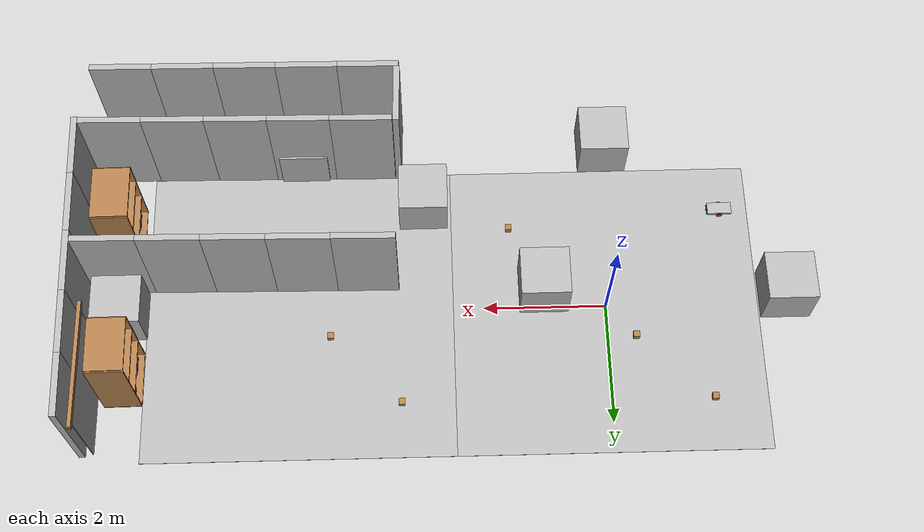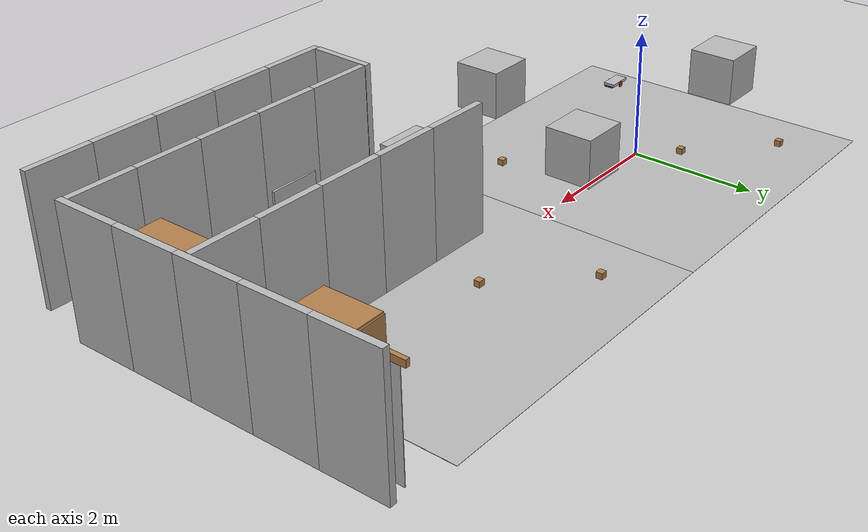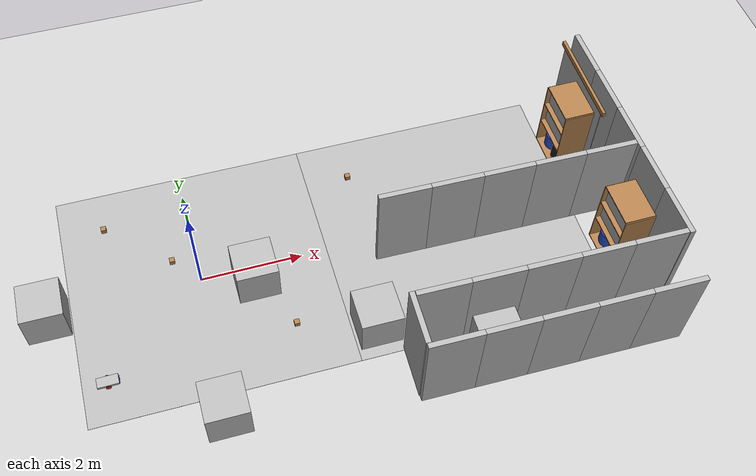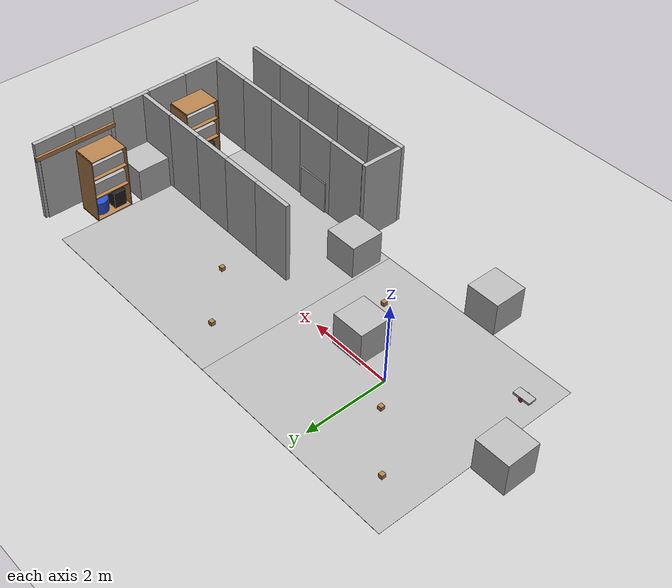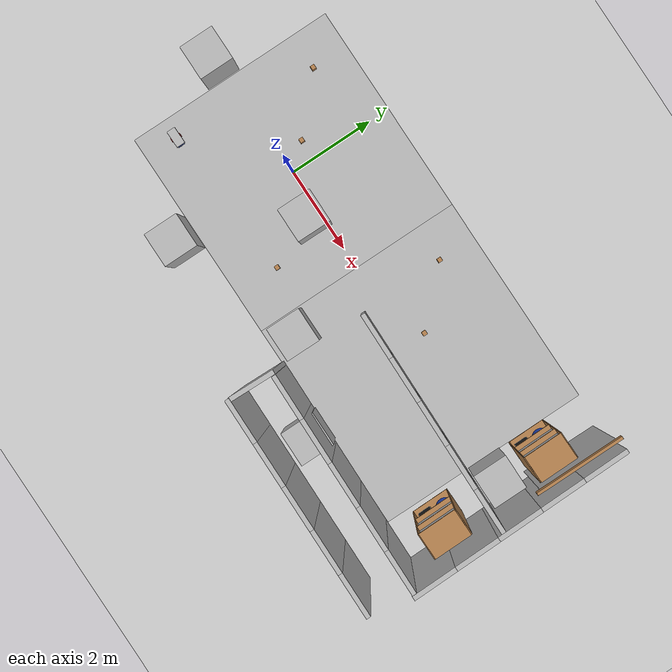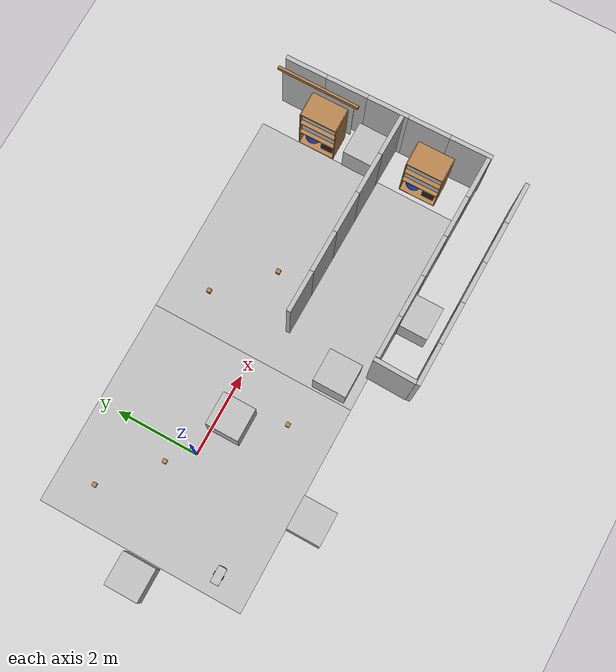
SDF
<sdf version="1.7">
 <world name="default">
  <model name="ground_plane">
   <static>1</static>
   <link name="link">
    <collision name="collision">
     <geometry><plane><normal>0 0 1</normal><size>100 100</size></plane></geometry>
     <surface><friction><ode><mu>100</mu><mu2>50</mu2></ode></friction></surface>
    </collision>
    <visual name="visual">
     <cast_shadows>0</cast_shadows>
     <geometry><plane><normal>0 0 1</normal><size>100 100</size></plane></geometry>
     <material>
      <script><uri>file://media/materials/scripts/gazebo.material</uri><name>Gazebo/Grey</name></script>
     </material>
    </visual>
   </link>
  </model>
  <model name="line_flooring">
   <link name="link">
    <collision name="collision">
     <geometry><plane><normal>0 0 1</normal><size>5 5</size></plane></geometry>
     <surface><friction><ode><mu>100</mu><mu2>50</mu2></ode></friction></surface>
    </collision>
    <visual name="visual">
     <geometry><plane><normal>0 0 1</normal><size>5 5</size></plane></geometry>
     <material>
      <script>
       <uri>model://env_line_flooring/materials/test_texture.material</uri>
       <name>LineFlooringTexture</name>
      </script>
     </material>
    </visual>
   </link>
   <pose>0 0 0.001 0 -0 0</pose>
   <static>1</static>
  </model>
  <model name="line_flooring2">
   <link name="link">
    <collision name="collision">
     <geometry><plane><normal>0 0 1</normal><size>5 5</size></plane></geometry>
     <surface><friction><ode><mu>100</mu><mu2>50</mu2></ode></friction></surface>
    </collision>
    <visual name="visual">
     <geometry><plane><normal>0 0 1</normal><size>5 5</size></plane></geometry>
     <material>
      <script>
       <uri>model://env_line_flooring/materials/test_texture.material</uri>
       <name>LineFlooringTexture</name>
      </script>
     </material>
    </visual>
   </link>
   <pose>5 0 0.001 0 -0 0</pose>
   <static>1</static>
  </model>
  <model name="number1">
   <pose>-0.090036 -2.90628 0.4 0 -0 0</pose>
   <static>1</static>
   <link name="link">
    <visual name="visual">
     <geometry><mesh><uri>model://number1/meshes/number.dae</uri></mesh></geometry>
     <material>
      <script>
       <uri>model://number1/materials/scripts</uri>
       <uri>model://number1/materials/textures</uri>
       <name>Number/One</name>
      </script>
     </material>
    </visual>
   </link>
  </model>
  <model name="number2">
   <pose>-2.92229 -0.135822 0.4 0 -0 0</pose>
   <static>1</static>
   <link name="link">
    <visual name="visual">
     <geometry><mesh><uri>model://number1/meshes/number.dae</uri></mesh></geometry>
     <material>
      <script>
       <uri>model://number2/materials/scripts</uri>
       <uri>model://number2/materials/textures</uri>
       <name>Number/Two</name>
      </script>
     </material>
    </visual>
   </link>
  </model>
  <model name="number4">
   <pose>4.9322 -2.83843 0.4 0 -0 0</pose>
   <static>1</static>
   <link name="link">
    <visual name="visual">
     <geometry><mesh><uri>model://number1/meshes/number.dae</uri></mesh></geometry>
     <material>
      <script>
       <uri>model://number4/materials/scripts</uri>
       <uri>model://number4/materials/textures</uri>
       <name>Number/Four</name>
      </script>
     </material>
    </visual>
   </link>
  </model>
  <model name="number5">
   <pose>7.88469 0.009354 0.4 0 -0 0</pose>
   <static>1</static>
   <link name="link">
    <visual name="visual">
     <geometry><mesh><uri>model://number1/meshes/number.dae</uri></mesh></geometry>
     <material>
      <script>
       <uri>model://number5/materials/scripts</uri>
       <uri>model://number5/materials/textures</uri>
       <name>Number/Five</name>
      </script>
     </material>
    </visual>
   </link>
  </model>
  <model name="wood_cube_10cm">
   <link name="link">
    <pose>0 0 0.05 0 -0 0</pose>
    <inertial>
     <mass>0.5167</mass>
     <inertia>
      <ixx>0.000861167</ixx>
      <ixy>0</ixy>
      <ixz>0</ixz>
      <iyy>0.000861167</iyy>
      <iyz>0</iyz>
      <izz>0.000861167</izz>
     </inertia>
    </inertial>
    <collision name="collision">
     <geometry><box><size>0.1 0.1 0.1</size></box></geometry>
     <surface>
      <contact>
       <poissons_ratio>0.347</poissons_ratio>
       <elastic_modulus>8.8e+09</elastic_modulus>
       <ode><kp>100000</kp><kd>100</kd><max_vel>100</max_vel><min_depth>0.001</min_depth></ode>
      </contact>
      <friction>
       <torsional>
        <coefficient>1</coefficient>
        <use_patch_radius>0</use_patch_radius>
        <surface_radius>0.01</surface_radius>
       </torsional>
      </friction>
     </surface>
    </collision>
    <visual name="visual">
     <geometry><box><size>0.1 0.1 0.1</size></box></geometry>
     <material>
      <script><uri>file://media/materials/scripts/gazebo.material</uri><name>Gazebo/Wood</name></script>
     </material>
    </visual>
   </link>
   <pose>1.54178 -1.4356 -3e-06 -1e-06 -3e-06 -0</pose>
  </model>
  <model name="env_wood_shelf">
   <link name="base">
    <inertial>
     <pose>0 0 0.8 0 -0 0</pose>
     <mass>100</mass>
     <inertia><ixx>33.4</ixx><ixy>0</ixy><ixz>0</ixz><iyy>41.7</iyy><iyz>0</iyz><izz>8.42</izz></inertia>
    </inertial>
    <collision name="collision_bottom">
     <pose>0 0 0.01 0 -0 0</pose>
     <geometry><box><size>0.6 0.9 0.02</size></box></geometry>
    </collision>
    <visual name="visual_bottom">
     <pose>0 0 0.01 0 -0 0</pose>
     <geometry><box><size>0.6 0.9 0.02</size></box></geometry>
     <material>
      <script><uri>model://env_wood_shelf/materials/test_texture.material</uri><name>WoodTecture1</name></script>
     </material>
    </visual>
    <collision name="collision_middle1">
     <pose>0 0 0.61 0 -0 0</pose>
     <geometry><box><size>0.6 0.86 0.02</size></box></geometry>
    </collision>
    <visual name="visual_middle1">
     <pose>0 0 0.61 0 -0 0</pose>
     <geometry><box><size>0.6 0.86 0.02</size></box></geometry>
     <material>
      <script><uri>model://env_wood_shelf/materials/test_texture.material</uri><name>WoodTecture1</name></script>
     </material>
    </visual>
    <collision name="collision_middle2">
     <pose>0 0 1.11 0 -0 0</pose>
     <geometry><box><size>0.6 0.86 0.02</size></box></geometry>
    </collision>
    <visual name="visual_middle2">
     <pose>0 0 1.11 0 -0 0</pose>
     <geometry><box><size>0.6 0.86 0.02</size></box></geometry>
     <material>
      <script><uri>model://env_wood_shelf/materials/test_texture.material</uri><name>WoodTecture1</name></script>
     </material>
    </visual>
    <collision name="collision_top">
     <pose>0 0 1.59 0 -0 0</pose>
     <geometry><box><size>0.6 0.86 0.02</size></box></geometry>
    </collision>
    <visual name="visual_top">
     <pose>0 0 1.59 0 -0 0</pose>
     <geometry><box><size>0.6 0.86 0.02</size></box></geometry>
     <material>
      <script><uri>model://env_wood_shelf/materials/test_texture.material</uri><name>WoodTecture1</name></script>
     </material>
    </visual>
    <collision name="collision_right">
     <pose>0 0.44 0.8 0 -0 0</pose>
     <geometry><box><size>0.6 0.02 1.56</size></box></geometry>
    </collision>
    <visual name="visual_right">
     <pose>0 0.44 0.8 0 1.5707 0</pose>
     <geometry><box><size>1.56 0.02 0.6</size></box></geometry>
     <material>
      <script><uri>model://env_wood_shelf/materials/test_texture.material</uri><name>WoodTecture1</name></script>
     </material>
    </visual>
    <collision name="collision_left">
     <pose>0 -0.44 0.8 0 -0 0</pose>
     <geometry><box><size>0.6 0.02 1.56</size></box></geometry>
    </collision>
    <visual name="visual_left">
     <pose>0 -0.44 0.8 0 1.5707 0</pose>
     <geometry><box><size>1.56 0.02 0.6</size></box></geometry>
     <material>
      <script><uri>model://env_wood_shelf/materials/test_texture.material</uri><name>WoodTecture1</name></script>
     </material>
    </visual>
    <collision name="collision_box">
     <pose>0 -0.22 0.22 0 -0 0</pose>
     <geometry><box><size>0.4 0.3 0.4</size></box></geometry>
    </collision>
    <visual name="visual_box">
     <pose>0 -0.22 0.22 0 -0 0</pose>
     <geometry><box><size>0.4 0.3 0.4</size></box></geometry>
     <material>
      <script>
       <uri>model://env_wood_shelf/materials/test_texture.material</uri>
       <name>PlasticBlackTexture</name>
      </script>
     </material>
    </visual>
    <collision name="collision_cylinder">
     <pose>0 0.2 0.17 0 -0 0</pose>
     <geometry><cylinder><radius>0.2</radius><length>0.3</length></cylinder></geometry>
    </collision>
    <visual name="visual_cylinder">
     <pose>0 0.2 0.17 0 -0 0</pose>
     <geometry><cylinder><radius>0.2</radius><length>0.3</length></cylinder></geometry>
     <material>
      <script>
       <uri>model://env_wood_shelf/materials/test_texture.material</uri>
       <name>PlasticBlueTexture</name>
      </script>
     </material>
    </visual>
    <collision name="collision_book1">
     <pose>0 0 0.77 0 -0 0</pose>
     <geometry><box><size>0.4 0.86 0.3</size></box></geometry>
    </collision>
    <visual name="visual_books1">
     <pose>0 0 0.77 0 -0 0</pose>
     <geometry><box><size>0.4 0.86 0.3</size></box></geometry>
     <material>
      <script><uri>model://env_wood_shelf/materials/test_texture.material</uri><name>Books1Texture</name></script>
     </material>
    </visual>
    <collision name="collision_book2">
     <pose>0 0 1.27 0 -0 0</pose>
     <geometry><box><size>0.4 0.86 0.3</size></box></geometry>
    </collision>
    <visual name="visual_books2">
     <pose>0 0 1.27 0 -0 0</pose>
     <geometry><box><size>0.4 0.86 0.3</size></box></geometry>
     <material>
      <script><uri>model://env_wood_shelf/materials/test_texture.material</uri><name>Books2Texture</name></script>
     </material>
    </visual>
   </link>
   <pose>7.90563 -1.47729 0.00095 -8.4e-05 4e-05 0.009894</pose>
  </model>
  <model name="env_large_room_0">
   <link name="base">
    <inertial>
     <mass>100</mass>
     <inertia><ixx>33.4</ixx><ixy>0</ixy><ixz>0</ixz><iyy>41.7</iyy><iyz>0</iyz><izz>8.42</izz></inertia>
    </inertial>
    <collision name="collision1">
     <pose>-2 0 0 0 -0 0</pose>
     <geometry><box><size>1 0.1 2</size></box></geometry>
    </collision>
    <collision name="collision2">
     <pose>-1 0 0 0 -0 0</pose>
     <geometry><box><size>1 0.1 2</size></box></geometry>
    </collision>
    <collision name="collision3"><geometry><box><size>1 0.1 2</size></box></geometry></collision>
    <collision name="collision4">
     <pose>1 0 0 0 -0 0</pose>
     <geometry><box><size>1 0.1 2</size></box></geometry>
    </collision>
    <collision name="collision5">
     <pose>2 0 0 0 -0 0</pose>
     <geometry><box><size>1 0.1 2</size></box></geometry>
    </collision>
    <visual name="visual1">
     <pose>-2 0 0 0 -0 0</pose>
     <geometry><box><size>1 0.1 2</size></box></geometry>
     <material>
      <script><uri>model://env_wall/materials/test_texture.material</uri><name>WallTexture01</name></script>
     </material>
    </visual>
    <visual name="visual2">
     <pose>-1 0 0 0 -0 0</pose>
     <geometry><box><size>1 0.1 2</size></box></geometry>
     <material>
      <script><uri>model://env_wall/materials/test_texture.material</uri><name>WallTexture01</name></script>
     </material>
    </visual>
    <visual name="visual3">
     <geometry><box><size>1 0.1 2</size></box></geometry>
     <material>
      <script><uri>model://env_wall/materials/test_texture.material</uri><name>WallTexture01</name></script>
     </material>
    </visual>
    <visual name="visual4">
     <pose>1 0 0 0 -0 0</pose>
     <geometry><box><size>1 0.1 2</size></box></geometry>
     <material>
      <script><uri>model://env_wall/materials/test_texture.material</uri><name>WallTexture01</name></script>
     </material>
    </visual>
    <visual name="visual5">
     <pose>2 0 0 0 -0 0</pose>
     <geometry><box><size>1 0.1 2</size></box></geometry>
     <material>
      <script><uri>model://env_wall/materials/test_texture.material</uri><name>WallTexture01</name></script>
     </material>
    </visual>
   </link>
   <pose>5.88403 -0.453887 1.001 -5e-06 -0 -0.013836</pose>
  </model>
  <model name="env_large_room_1">
   <link name="base">
    <inertial>
     <mass>100</mass>
     <inertia><ixx>33.4</ixx><ixy>0</ixy><ixz>0</ixz><iyy>41.7</iyy><iyz>0</iyz><izz>8.42</izz></inertia>
    </inertial>
    <collision name="collision1">
     <pose>-2 0 0 0 -0 0</pose>
     <geometry><box><size>1 0.1 2</size></box></geometry>
    </collision>
    <collision name="collision2">
     <pose>-1 0 0 0 -0 0</pose>
     <geometry><box><size>1 0.1 2</size></box></geometry>
    </collision>
    <collision name="collision3"><geometry><box><size>1 0.1 2</size></box></geometry></collision>
    <collision name="collision4">
     <pose>1 0 0 0 -0 0</pose>
     <geometry><box><size>1 0.1 2</size></box></geometry>
    </collision>
    <collision name="collision5">
     <pose>2 0 0 0 -0 0</pose>
     <geometry><box><size>1 0.1 2</size></box></geometry>
    </collision>
    <visual name="visual1">
     <pose>-2 0 0 0 -0 0</pose>
     <geometry><box><size>1 0.1 2</size></box></geometry>
     <material>
      <script><uri>model://env_wall/materials/test_texture.material</uri><name>WallTexture01</name></script>
     </material>
    </visual>
    <visual name="visual2">
     <pose>-1 0 0 0 -0 0</pose>
     <geometry><box><size>1 0.1 2</size></box></geometry>
     <material>
      <script><uri>model://env_wall/materials/test_texture.material</uri><name>WallTexture01</name></script>
     </material>
    </visual>
    <visual name="visual3">
     <geometry><box><size>1 0.1 2</size></box></geometry>
     <material>
      <script><uri>model://env_wall/materials/test_texture.material</uri><name>WallTexture01</name></script>
     </material>
    </visual>
    <visual name="visual4">
     <pose>1 0 0 0 -0 0</pose>
     <geometry><box><size>1 0.1 2</size></box></geometry>
     <material>
      <script><uri>model://env_wall/materials/test_texture.material</uri><name>WallTexture01</name></script>
     </material>
    </visual>
    <visual name="visual5">
     <pose>2 0 0 0 -0 0</pose>
     <geometry><box><size>1 0.1 2</size></box></geometry>
     <material>
      <script><uri>model://env_wall/materials/test_texture.material</uri><name>WallTexture01</name></script>
     </material>
    </visual>
   </link>
   <pose>8.42949 -0.129357 1.00085 -2.4e-05 -0.000103 -1.55446</pose>
  </model>
  <model name="env_large_room_6">
   <link name="base">
    <inertial>
     <mass>100</mass>
     <inertia><ixx>33.4</ixx><ixy>0</ixy><ixz>0</ixz><iyy>41.7</iyy><iyz>0</iyz><izz>8.42</izz></inertia>
    </inertial>
    <collision name="collision1">
     <pose>-2 0 0 0 -0 0</pose>
     <geometry><box><size>1 0.1 2</size></box></geometry>
    </collision>
    <collision name="collision2">
     <pose>-1 0 0 0 -0 0</pose>
     <geometry><box><size>1 0.1 2</size></box></geometry>
    </collision>
    <collision name="collision3"><geometry><box><size>1 0.1 2</size></box></geometry></collision>
    <collision name="collision4">
     <pose>1 0 0 0 -0 0</pose>
     <geometry><box><size>1 0.1 2</size></box></geometry>
    </collision>
    <collision name="collision5">
     <pose>2 0 0 0 -0 0</pose>
     <geometry><box><size>1 0.1 2</size></box></geometry>
    </collision>
    <visual name="visual1">
     <pose>-2 0 0 0 -0 0</pose>
     <geometry><box><size>1 0.1 2</size></box></geometry>
     <material>
      <script><uri>model://env_wall/materials/test_texture.material</uri><name>WallTexture01</name></script>
     </material>
    </visual>
    <visual name="visual2">
     <pose>-1 0 0 0 -0 0</pose>
     <geometry><box><size>1 0.1 2</size></box></geometry>
     <material>
      <script><uri>model://env_wall/materials/test_texture.material</uri><name>WallTexture01</name></script>
     </material>
    </visual>
    <visual name="visual3">
     <geometry><box><size>1 0.1 2</size></box></geometry>
     <material>
      <script><uri>model://env_wall/materials/test_texture.material</uri><name>WallTexture01</name></script>
     </material>
    </visual>
    <visual name="visual4">
     <pose>1 0 0 0 -0 0</pose>
     <geometry><box><size>1 0.1 2</size></box></geometry>
     <material>
      <script><uri>model://env_wall/materials/test_texture.material</uri><name>WallTexture01</name></script>
     </material>
    </visual>
    <visual name="visual5">
     <pose>2 0 0 0 -0 0</pose>
     <geometry><box><size>1 0.1 2</size></box></geometry>
     <material>
      <script><uri>model://env_wall/materials/test_texture.material</uri><name>WallTexture01</name></script>
     </material>
    </visual>
   </link>
   <pose>5.91805 -2.53464 1.001 9e-06 1e-06 -0.013816</pose>
  </model>
  <model name="wood_cube_10cm_2">
   <link name="link">
    <pose>0 0 0.05 0 -0 0</pose>
    <inertial>
     <mass>0.5167</mass>
     <inertia>
      <ixx>0.000861167</ixx>
      <ixy>0</ixy>
      <ixz>0</ixz>
      <iyy>0.000861167</iyy>
      <iyz>0</iyz>
      <izz>0.000861167</izz>
     </inertia>
    </inertial>
    <collision name="collision">
     <geometry><box><size>0.1 0.1 0.1</size></box></geometry>
     <surface>
      <contact>
       <poissons_ratio>0.347</poissons_ratio>
       <elastic_modulus>8.8e+09</elastic_modulus>
       <ode><kp>100000</kp><kd>100</kd><max_vel>100</max_vel><min_depth>0.001</min_depth></ode>
      </contact>
      <friction>
       <torsional>
        <coefficient>1</coefficient>
        <use_patch_radius>0</use_patch_radius>
        <surface_radius>0.01</surface_radius>
       </torsional>
      </friction>
     </surface>
    </collision>
    <visual name="visual">
     <geometry><box><size>0.1 0.1 0.1</size></box></geometry>
     <material>
      <script><uri>file://media/materials/scripts/gazebo.material</uri><name>Gazebo/Wood</name></script>
     </material>
    </visual>
   </link>
   <pose>3.35972 1.59541 -3e-06 -1e-06 -3e-06 -0</pose>
  </model>
  <model name="wood_cube_10cm_3">
   <link name="link">
    <pose>0 0 0.05 0 -0 0</pose>
    <inertial>
     <mass>0.5167</mass>
     <inertia>
      <ixx>0.000861167</ixx>
      <ixy>0</ixy>
      <ixz>0</ixz>
      <iyy>0.000861167</iyy>
      <iyz>0</iyz>
      <izz>0.000861167</izz>
     </inertia>
    </inertial>
    <collision name="collision">
     <geometry><box><size>0.1 0.1 0.1</size></box></geometry>
     <surface>
      <contact>
       <poissons_ratio>0.347</poissons_ratio>
       <elastic_modulus>8.8e+09</elastic_modulus>
       <ode><kp>100000</kp><kd>100</kd><max_vel>100</max_vel><min_depth>0.001</min_depth></ode>
      </contact>
      <friction>
       <torsional>
        <coefficient>1</coefficient>
        <use_patch_radius>0</use_patch_radius>
        <surface_radius>0.01</surface_radius>
       </torsional>
      </friction>
     </surface>
    </collision>
    <visual name="visual">
     <geometry><box><size>0.1 0.1 0.1</size></box></geometry>
     <material>
      <script><uri>file://media/materials/scripts/gazebo.material</uri><name>Gazebo/Wood</name></script>
     </material>
    </visual>
   </link>
   <pose>4.50285 0.440364 -3e-06 1e-06 3e-06 -0</pose>
  </model>
  <model name="env_wood_shelf_4">
   <link name="base">
    <inertial>
     <pose>0 0 0.8 0 -0 0</pose>
     <mass>100</mass>
     <inertia><ixx>33.4</ixx><ixy>0</ixy><ixz>0</ixz><iyy>41.7</iyy><iyz>0</iyz><izz>8.42</izz></inertia>
    </inertial>
    <collision name="collision_bottom">
     <pose>0 0 0.01 0 -0 0</pose>
     <geometry><box><size>0.6 0.9 0.02</size></box></geometry>
    </collision>
    <visual name="visual_bottom">
     <pose>0 0 0.01 0 -0 0</pose>
     <geometry><box><size>0.6 0.9 0.02</size></box></geometry>
     <material>
      <script><uri>model://env_wood_shelf/materials/test_texture.material</uri><name>WoodTecture1</name></script>
     </material>
    </visual>
    <collision name="collision_middle1">
     <pose>0 0 0.61 0 -0 0</pose>
     <geometry><box><size>0.6 0.86 0.02</size></box></geometry>
    </collision>
    <visual name="visual_middle1">
     <pose>0 0 0.61 0 -0 0</pose>
     <geometry><box><size>0.6 0.86 0.02</size></box></geometry>
     <material>
      <script><uri>model://env_wood_shelf/materials/test_texture.material</uri><name>WoodTecture1</name></script>
     </material>
    </visual>
    <collision name="collision_middle2">
     <pose>0 0 1.11 0 -0 0</pose>
     <geometry><box><size>0.6 0.86 0.02</size></box></geometry>
    </collision>
    <visual name="visual_middle2">
     <pose>0 0 1.11 0 -0 0</pose>
     <geometry><box><size>0.6 0.86 0.02</size></box></geometry>
     <material>
      <script><uri>model://env_wood_shelf/materials/test_texture.material</uri><name>WoodTecture1</name></script>
     </material>
    </visual>
    <collision name="collision_top">
     <pose>0 0 1.59 0 -0 0</pose>
     <geometry><box><size>0.6 0.86 0.02</size></box></geometry>
    </collision>
    <visual name="visual_top">
     <pose>0 0 1.59 0 -0 0</pose>
     <geometry><box><size>0.6 0.86 0.02</size></box></geometry>
     <material>
      <script><uri>model://env_wood_shelf/materials/test_texture.material</uri><name>WoodTecture1</name></script>
     </material>
    </visual>
    <collision name="collision_right">
     <pose>0 0.44 0.8 0 -0 0</pose>
     <geometry><box><size>0.6 0.02 1.56</size></box></geometry>
    </collision>
    <visual name="visual_right">
     <pose>0 0.44 0.8 0 1.5707 0</pose>
     <geometry><box><size>1.56 0.02 0.6</size></box></geometry>
     <material>
      <script><uri>model://env_wood_shelf/materials/test_texture.material</uri><name>WoodTecture1</name></script>
     </material>
    </visual>
    <collision name="collision_left">
     <pose>0 -0.44 0.8 0 -0 0</pose>
     <geometry><box><size>0.6 0.02 1.56</size></box></geometry>
    </collision>
    <visual name="visual_left">
     <pose>0 -0.44 0.8 0 1.5707 0</pose>
     <geometry><box><size>1.56 0.02 0.6</size></box></geometry>
     <material>
      <script><uri>model://env_wood_shelf/materials/test_texture.material</uri><name>WoodTecture1</name></script>
     </material>
    </visual>
    <collision name="collision_box">
     <pose>0 -0.22 0.22 0 -0 0</pose>
     <geometry><box><size>0.4 0.3 0.4</size></box></geometry>
    </collision>
    <visual name="visual_box">
     <pose>0 -0.22 0.22 0 -0 0</pose>
     <geometry><box><size>0.4 0.3 0.4</size></box></geometry>
     <material>
      <script>
       <uri>model://env_wood_shelf/materials/test_texture.material</uri>
       <name>PlasticBlackTexture</name>
      </script>
     </material>
    </visual>
    <collision name="collision_cylinder">
     <pose>0 0.2 0.17 0 -0 0</pose>
     <geometry><cylinder><radius>0.2</radius><length>0.3</length></cylinder></geometry>
    </collision>
    <visual name="visual_cylinder">
     <pose>0 0.2 0.17 0 -0 0</pose>
     <geometry><cylinder><radius>0.2</radius><length>0.3</length></cylinder></geometry>
     <material>
      <script>
       <uri>model://env_wood_shelf/materials/test_texture.material</uri>
       <name>PlasticBlueTexture</name>
      </script>
     </material>
    </visual>
    <collision name="collision_book1">
     <pose>0 0 0.77 0 -0 0</pose>
     <geometry><box><size>0.4 0.86 0.3</size></box></geometry>
    </collision>
    <visual name="visual_books1">
     <pose>0 0 0.77 0 -0 0</pose>
     <geometry><box><size>0.4 0.86 0.3</size></box></geometry>
     <material>
      <script><uri>model://env_wood_shelf/materials/test_texture.material</uri><name>Books1Texture</name></script>
     </material>
    </visual>
    <collision name="collision_book2">
     <pose>0 0 1.27 0 -0 0</pose>
     <geometry><box><size>0.4 0.86 0.3</size></box></geometry>
    </collision>
    <visual name="visual_books2">
     <pose>0 0 1.27 0 -0 0</pose>
     <geometry><box><size>0.4 0.86 0.3</size></box></geometry>
     <material>
      <script><uri>model://env_wood_shelf/materials/test_texture.material</uri><name>Books2Texture</name></script>
     </material>
    </visual>
   </link>
   <pose>7.80474 1.10098 0.00095 -8.4e-05 4e-05 0.010893</pose>
  </model>
  <model name="env_curtain_2">
   <static>1</static>
   <link name="link">
    <collision name="collision">
     <geometry><box><size>0.01 1.8 1.6</size></box></geometry>
     <surface><friction><ode><mu>100</mu><mu2>50</mu2></ode></friction></surface>
    </collision>
    <visual name="visual">
     <cast_shadows>0</cast_shadows>
     <geometry><box><size>0.01 1.8 1.6</size></box></geometry>
     <material>
      <script><uri>model://env_curtain/materials/test_texture.material</uri><name>CurtainTexture</name></script>
     </material>
    </visual>
    <visual name="visual_top">
     <pose>0 0 0.83 0 -0 0</pose>
     <cast_shadows>0</cast_shadows>
     <geometry><box><size>0.06 2 0.1</size></box></geometry>
     <material>
      <script><uri>model://env_curtain/materials/test_texture.material</uri><name>WoodTecture1</name></script>
     </material>
    </visual>
   </link>
   <pose>8.19325 1.46709 0.906863 0 -0 0</pose>
  </model>
  <model name="line_flooring">
   <link name="link">
    <collision name="collision">
     <geometry><plane><normal>0 0 1</normal><size>5 5</size></plane></geometry>
     <surface><friction><ode><mu>100</mu><mu2>50</mu2></ode></friction></surface>
    </collision>
    <visual name="visual">
     <geometry><plane><normal>0 0 1</normal><size>5 5</size></plane></geometry>
     <material>
      <script>
       <uri>model://env_line_flooring/materials/test_texture.material</uri>
       <name>LineFlooringTexture</name>
      </script>
     </material>
    </visual>
   </link>
   <pose>0 0 0.001 0 -0 0</pose>
   <static>1</static>
  </model>
  <model name="number4_clone">
   <pose>2.95825 -1.88352 0.4 0 -0 0</pose>
   <static>1</static>
   <link name="link">
    <visual name="visual">
     <geometry><mesh><uri>model://number1/meshes/number.dae</uri></mesh></geometry>
     <material>
      <script>
       <uri>model://number4/materials/scripts</uri>
       <uri>model://number4/materials/textures</uri>
       <name>Number/Four</name>
      </script>
     </material>
    </visual>
   </link>
  </model>
  <model name="wood_cube_10cm_clone">
   <link name="link">
    <pose>0 0 0.05 0 -0 0</pose>
    <inertial>
     <mass>0.5167</mass>
     <inertia>
      <ixx>0.000861167</ixx>
      <ixy>0</ixy>
      <ixz>0</ixz>
      <iyy>0.000861167</iyy>
      <iyz>0</iyz>
      <izz>0.000861167</izz>
     </inertia>
    </inertial>
    <collision name="collision">
     <geometry><box><size>0.1 0.1 0.1</size></box></geometry>
     <surface>
      <contact>
       <poissons_ratio>0.347</poissons_ratio>
       <elastic_modulus>8.8e+09</elastic_modulus>
       <ode><kp>100000</kp><kd>100</kd><max_vel>100</max_vel><min_depth>0.001</min_depth></ode>
      </contact>
      <friction>
       <torsional>
        <coefficient>1</coefficient>
        <use_patch_radius>0</use_patch_radius>
        <surface_radius>0.01</surface_radius>
       </torsional>
      </friction>
     </surface>
    </collision>
    <visual name="visual">
     <geometry><box><size>0.1 0.1 0.1</size></box></geometry>
     <material>
      <script><uri>file://media/materials/scripts/gazebo.material</uri><name>Gazebo/Wood</name></script>
     </material>
    </visual>
   </link>
   <pose>-1.64124 1.62293 -3e-06 1e-06 -3e-06 0</pose>
  </model>
  <model name="wood_cube_10cm_clone_0">
   <link name="link">
    <pose>0 0 0.05 0 -0 0</pose>
    <inertial>
     <mass>0.5167</mass>
     <inertia>
      <ixx>0.000861167</ixx>
      <ixy>0</ixy>
      <ixz>0</ixz>
      <iyy>0.000861167</iyy>
      <iyz>0</iyz>
      <izz>0.000861167</izz>
     </inertia>
    </inertial>
    <collision name="collision">
     <geometry><box><size>0.1 0.1 0.1</size></box></geometry>
     <surface>
      <contact>
       <poissons_ratio>0.347</poissons_ratio>
       <elastic_modulus>8.8e+09</elastic_modulus>
       <ode><kp>100000</kp><kd>100</kd><max_vel>100</max_vel><min_depth>0.001</min_depth></ode>
      </contact>
      <friction>
       <torsional>
        <coefficient>1</coefficient>
        <use_patch_radius>0</use_patch_radius>
        <surface_radius>0.01</surface_radius>
       </torsional>
      </friction>
     </surface>
    </collision>
    <visual name="visual">
     <geometry><box><size>0.1 0.1 0.1</size></box></geometry>
     <material>
      <script><uri>file://media/materials/scripts/gazebo.material</uri><name>Gazebo/Wood</name></script>
     </material>
    </visual>
   </link>
   <pose>-0.462864 0.538434 -3e-06 -1e-06 3e-06 0</pose>
  </model>
  <model name="env_large_room_7_clone">
   <link name="base">
    <inertial>
     <mass>100</mass>
     <inertia><ixx>33.4</ixx><ixy>0</ixy><ixz>0</ixz><iyy>41.7</iyy><iyz>0</iyz><izz>8.42</izz></inertia>
    </inertial>
    <collision name="collision"><geometry><box><size>1 0.1 2</size></box></geometry></collision>
    <visual name="visual">
     <geometry><box><size>1 0.1 2</size></box></geometry>
     <material>
      <script><uri>model://env_wall/materials/test_texture.material</uri><name>WallTexture01</name></script>
     </material>
    </visual>
   </link>
   <pose>3.34934 -2.94853 1.00081 -7e-06 -0 1.54749</pose>
  </model>
  <model name="env_large_room_6_clone">
   <link name="base">
    <inertial>
     <mass>100</mass>
     <inertia><ixx>33.4</ixx><ixy>0</ixy><ixz>0</ixz><iyy>41.7</iyy><iyz>0</iyz><izz>8.42</izz></inertia>
    </inertial>
    <collision name="collision1">
     <pose>-2 0 0 0 -0 0</pose>
     <geometry><box><size>1 0.1 2</size></box></geometry>
    </collision>
    <collision name="collision2">
     <pose>-1 0 0 0 -0 0</pose>
     <geometry><box><size>1 0.1 2</size></box></geometry>
    </collision>
    <collision name="collision3"><geometry><box><size>1 0.1 2</size></box></geometry></collision>
    <collision name="collision4">
     <pose>1 0 0 0 -0 0</pose>
     <geometry><box><size>1 0.1 2</size></box></geometry>
    </collision>
    <collision name="collision5">
     <pose>2 0 0 0 -0 0</pose>
     <geometry><box><size>1 0.1 2</size></box></geometry>
    </collision>
    <visual name="visual1">
     <pose>-2 0 0 0 -0 0</pose>
     <geometry><box><size>1 0.1 2</size></box></geometry>
     <material>
      <script><uri>model://env_wall/materials/test_texture.material</uri><name>WallTexture01</name></script>
     </material>
    </visual>
    <visual name="visual2">
     <pose>-1 0 0 0 -0 0</pose>
     <geometry><box><size>1 0.1 2</size></box></geometry>
     <material>
      <script><uri>model://env_wall/materials/test_texture.material</uri><name>WallTexture01</name></script>
     </material>
    </visual>
    <visual name="visual3">
     <geometry><box><size>1 0.1 2</size></box></geometry>
     <material>
      <script><uri>model://env_wall/materials/test_texture.material</uri><name>WallTexture01</name></script>
     </material>
    </visual>
    <visual name="visual4">
     <pose>1 0 0 0 -0 0</pose>
     <geometry><box><size>1 0.1 2</size></box></geometry>
     <material>
      <script><uri>model://env_wall/materials/test_texture.material</uri><name>WallTexture01</name></script>
     </material>
    </visual>
    <visual name="visual5">
     <pose>2 0 0 0 -0 0</pose>
     <geometry><box><size>1 0.1 2</size></box></geometry>
     <material>
      <script><uri>model://env_wall/materials/test_texture.material</uri><name>WallTexture01</name></script>
     </material>
    </visual>
   </link>
   <pose>5.80218 -3.52469 1.001 5e-06 2e-06 -0.009526</pose>
  </model>
  <model name="harvestx_cube">
   <pose>1.0151 -0.318224 0.4 0 -0 0</pose>
   <static>1</static>
   <link name="link">
    <visual name="visual">
     <geometry><mesh><uri>model://harvestx_cube/meshes/number.dae</uri></mesh></geometry>
     <material>
      <script>
       <uri>model://harvestx_cube/materials/scripts</uri>
       <uri>model://harvestx_cube/materials/textures</uri>
       <name>HarvestxCube</name>
      </script>
     </material>
    </visual>
   </link>
  </model>
  <model name="line_robot2">
   <pose>-2.02503 -1.70146 0.080609 0.000132 0.002449 0.012465</pose>
   <link name="body_link">
    <inertial>
     <pose>-0.1 0 0 0 -0 0</pose>
     <mass>1</mass>
     <inertia><ixx>0.1</ixx><ixy>0</ixy><ixz>0</ixz><iyy>0.1</iyy><iyz>0</iyz><izz>0.1</izz></inertia>
    </inertial>
    <collision name="collision"><geometry><box><size>0.4 0.2 0.04</size></box></geometry></collision>
    <visual name="visual">
     <geometry><mesh><uri>model://line_robot2/meshes/car.dae</uri></mesh></geometry>
     <material>
      <script>
       <uri>model://line_robot2/materials/scripts</uri>
       <uri>model://line_robot2/materials/textures</uri>
       <name>LineRobot2</name>
      </script>
     </material>
    </visual>
   </link>
   <link name="lidar_link">
    <pose>0.215 0 -0.03 0 -0 0</pose>
    <inertial>
     <mass>0.1</mass>
     <inertia><ixx>0.1</ixx><ixy>0</ixy><ixz>0</ixz><iyy>0.1</iyy><iyz>0</iyz><izz>0.1</izz></inertia>
    </inertial>
    <collision name="collision"><geometry><box><size>0.01 0.01 0.01</size></box></geometry></collision>
    <visual name="visual"><geometry><box><size>0.01 0.01 0.01</size></box></geometry></visual>
    <sensor name="sensor_ray" type="ray">
     <ray>
      <scan>
       <horizontal>
        <samples>300</samples>
        <resolution>1</resolution>
        <min_angle>-0.5236</min_angle>
        <max_angle>0.5236</max_angle>
       </horizontal>
       <vertical>
        <samples>100</samples>
        <resolution>1</resolution>
        <min_angle>-0.5236</min_angle>
        <max_angle>0.5236</max_angle>
       </vertical>
      </scan>
      <range><min>0.05</min><max>50</max></range>
     </ray>
     <always_on>1</always_on>
     <update_rate>1</update_rate>
     <plugin name="laserscan" filename="libgazebo_ros_ray_sensor.so">
      <ros><namespace>/ray</namespace><remapping>~/out:=laserscan</remapping></ros>
      <output_type>sensor_msgs/LaserScan</output_type>
     </plugin>
     <plugin name="range" filename="libgazebo_ros_ray_sensor.so">
      <ros><namespace>/ray</namespace><remapping>~/out:=range</remapping></ros>
      <output_type>sensor_msgs/Range</output_type>
     </plugin>
    </sensor>
    <material>
     <script><uri>file://media/materials/scripts/gazebo.material</uri><name>Gazebo/Orange</name></script>
    </material>
   </link>
   <link name="left_wheel_link">
    <pose>0 0.11 -0.03 1.5707 -0 0</pose>
    <inertial>
     <mass>0.1</mass>
     <inertia><ixx>0.01</ixx><ixy>0</ixy><ixz>0</ixz><iyy>0.01</iyy><iyz>0</iyz><izz>0.01</izz></inertia>
    </inertial>
    <collision name="collision">
     <geometry><cylinder><radius>0.05</radius><length>0.01</length></cylinder></geometry>
    </collision>
    <visual name="visual">
     <geometry><cylinder><radius>0.05</radius><length>0.01</length></cylinder></geometry>
     <material>
      <script><uri>file://media/materials/scripts/gazebo.material</uri><name>Gazebo/Red</name></script>
     </material>
    </visual>
   </link>
   <link name="right_wheel_link">
    <pose>0 -0.11 -0.03 1.5707 -0 0</pose>
    <inertial>
     <mass>0.1</mass>
     <inertia><ixx>0.01</ixx><ixy>0</ixy><ixz>0</ixz><iyy>0.01</iyy><iyz>0</iyz><izz>0.01</izz></inertia>
    </inertial>
    <collision name="collision">
     <geometry><cylinder><radius>0.05</radius><length>0.01</length></cylinder></geometry>
    </collision>
    <visual name="visual">
     <geometry><cylinder><radius>0.05</radius><length>0.01</length></cylinder></geometry>
     <material>
      <script><uri>file://media/materials/scripts/gazebo.material</uri><name>Gazebo/Red</name></script>
     </material>
    </visual>
   </link>
   <link name="caster_link">
    <pose>-0.15 0 -0.03 0 -0 0</pose>
    <inertial>
     <mass>0.1</mass>
     <inertia><ixx>0.01</ixx><ixy>0</ixy><ixz>0</ixz><iyy>0.01</iyy><iyz>0</iyz><izz>0.01</izz></inertia>
    </inertial>
    <collision name="collision">
     <geometry><sphere><radius>0.05</radius></sphere></geometry>
     <surface><friction><ode><mu>0.01</mu><mu2>0.01</mu2></ode></friction></surface>
    </collision>
    <visual name="visual"><geometry><sphere><radius>0.05</radius></sphere></geometry></visual>
   </link>
   <link name="front_sensor_link">
    <pose>0.2 0 -0.03 0 1.5707 0</pose>
    <inertial>
     <mass>0.1</mass>
     <inertia><ixx>0.01</ixx><ixy>0</ixy><ixz>0</ixz><iyy>0.01</iyy><iyz>0</iyz><izz>0.01</izz></inertia>
    </inertial>
    <collision name="collision"><geometry><box><size>0.02 0.16 0.02</size></box></geometry></collision>
    <visual name="visual">
     <geometry><box><size>0.02 0.16 0.02</size></box></geometry>
     <material>
      <script><uri>file://media/materials/scripts/gazebo.material</uri><name>Gazebo/Blue</name></script>
     </material>
    </visual>
    <sensor name="camera1" type="camera">
     <pose>-0.2 0 0 0 -0 0</pose>
     <update_rate>10</update_rate>
     <always_on>1</always_on>
     <visualize>1</visualize>
     <camera name="head">
      <horizontal_fov>0.64</horizontal_fov>
      <image><width>100</width><height>1</height><format>R8G8B8</format></image>
      <clip><near>0.221</near><far>300</far></clip>
      <noise><type>gaussian</type><mean>0</mean><stddev>0.007</stddev></noise>
     </camera>
    </sensor>
   </link>
   <joint name="left_wheel_joint" type="revolute">
    <parent>body_link</parent>
    <child>left_wheel_link</child>
    <pose>0 0 0.5 0 -0 0</pose>
    <axis>
     <xyz expressed_in="__model__">0 1 0</xyz>
     <limit><lower>-1e+16</lower><upper>1e+16</upper></limit>
     <dynamics><spring_reference>0</spring_reference><spring_stiffness>0</spring_stiffness></dynamics>
    </axis>
   </joint>
   <joint name="right_wheel_joint" type="revolute">
    <parent>body_link</parent>
    <child>right_wheel_link</child>
    <pose>0 0 0.5 0 -0 0</pose>
    <axis>
     <xyz expressed_in="__model__">0 1 0</xyz>
     <limit><lower>-1e+16</lower><upper>1e+16</upper></limit>
     <dynamics><spring_reference>0</spring_reference><spring_stiffness>0</spring_stiffness></dynamics>
    </axis>
   </joint>
   <joint name="caster_joint" type="fixed">
    <parent>body_link</parent>
    <child>caster_link</child>
    <axis><xyz expressed_in="__model__">0 1 0</xyz><limit><lower>-1e+16</lower><upper>1e+16</upper></limit></axis>
   </joint>
   <joint name="front_sensor_joint" type="fixed">
    <parent>body_link</parent>
    <child>front_sensor_link</child>
    <axis><xyz expressed_in="__model__">0 1 0</xyz><limit><lower>-1e+16</lower><upper>1e+16</upper></limit></axis>
   </joint>
   <joint name="lidar_join" type="fixed">
    <parent>body_link</parent>
    <child>lidar_link</child>
    <axis><xyz expressed_in="__model__">0 1 0</xyz><limit><lower>-1e+16</lower><upper>1e+16</upper></limit></axis>
   </joint>
   <plugin name="diff_drive" filename="libdiff_drive_controller_plugin.so">
    <left_joint>left_wheel_joint</left_joint>
    <right_joint>right_wheel_joint</right_joint>
    <wheel_separation>1.25</wheel_separation>
    <wheel_diameter>0.6</wheel_diameter>
    <max_wheel_torque>20</max_wheel_torque>
    <max_wheel_acceleration>1.0</max_wheel_acceleration>
    <publish_odom>1</publish_odom>
    <publish_odom_tf>1</publish_odom_tf>
    <publish_wheel_tf>1</publish_wheel_tf>
    <odometry_frame>odom_demo</odometry_frame>
    <robot_base_frame>chassis</robot_base_frame>
   </plugin>
  </model>
 </world>
</sdf>
